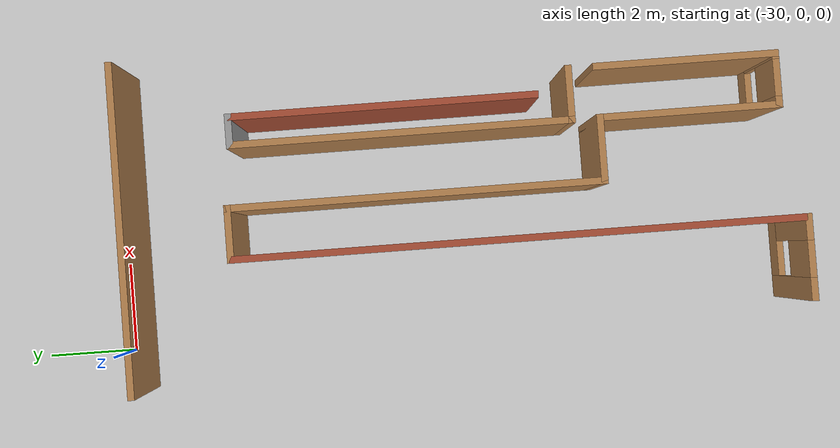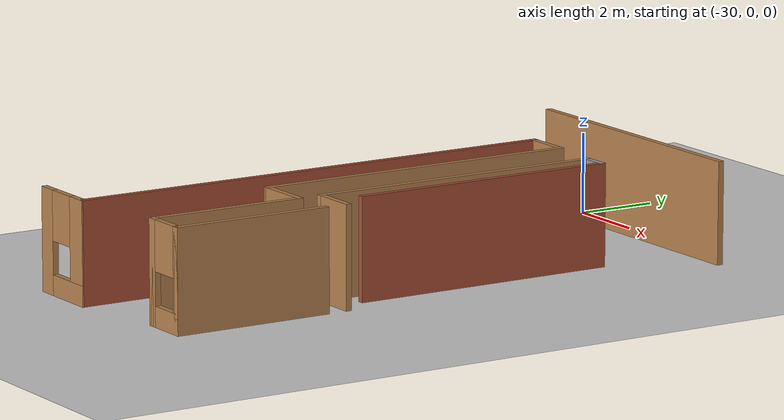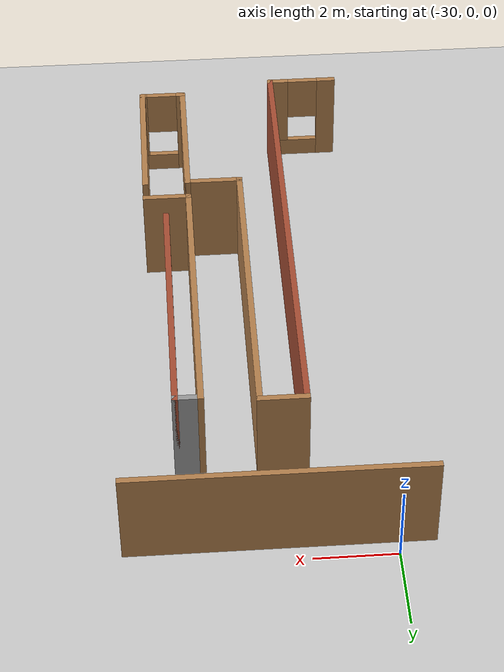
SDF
<sdf version="1.7">
 <world name="default">
  <model name="ground_plane">
   <static>1</static>
   <link name="link">
    <collision name="collision">
     <geometry><plane><normal>0 0 1</normal><size>100 100</size></plane></geometry>
     <surface><friction><ode><mu>100</mu><mu2>50</mu2></ode></friction></surface>
    </collision>
    <visual name="visual">
     <cast_shadows>0</cast_shadows>
     <geometry><plane><normal>0 0 1</normal><size>100 100</size></plane></geometry>
     <material>
      <script><uri>file://media/materials/scripts/gazebo.material</uri><name>Gazebo/Grey</name></script>
     </material>
    </visual>
   </link>
  </model>
  <model name="simple_maze">
   <pose>-16.3821 -8.2673 0 0 -0 0</pose>
   <link name="Wall_17">
    <pose>-12.554 -6.86796 0 0 -0 0</pose>
    <visual name="Wall_17_Visual_0">
     <pose>-0.686423 0 1.25 0 -0 0</pose>
     <geometry><box><size>0.501673 0.15 2.5</size></box></geometry>
     <material>
      <script><uri>file://media/materials/scripts/gazebo.material</uri><name>Gazebo/Wood</name></script>
      <ambient>1 1 1 1</ambient>
     </material>
     <meta><layer>0</layer></meta>
    </visual>
    <collision name="Wall_17_Collision_0">
     <geometry><box><size>0.501673 0.15 2.5</size></box></geometry>
     <pose>-0.686423 0 1.25 0 -0 0</pose>
    </collision>
    <visual name="Wall_17_Visual_1">
     <pose>0.250836 0 0.25 0 -0 0</pose>
     <geometry><box><size>1.37285 0.15 0.5</size></box></geometry>
     <material>
      <script><uri>file://media/materials/scripts/gazebo.material</uri><name>Gazebo/Wood</name></script>
      <ambient>1 1 1 1</ambient>
     </material>
     <meta><layer>0</layer></meta>
    </visual>
    <collision name="Wall_17_Collision_1">
     <geometry><box><size>1.37285 0.15 0.5</size></box></geometry>
     <pose>0.250836 0 0.25 0 -0 0</pose>
    </collision>
    <visual name="Wall_17_Visual_2">
     <pose>0.650836 0 1.5 0 -0 0</pose>
     <geometry><box><size>0.572846 0.15 2</size></box></geometry>
     <material>
      <script><uri>file://media/materials/scripts/gazebo.material</uri><name>Gazebo/Wood</name></script>
      <ambient>1 1 1 1</ambient>
     </material>
     <meta><layer>0</layer></meta>
    </visual>
    <collision name="Wall_17_Collision_2">
     <geometry><box><size>0.572846 0.15 2</size></box></geometry>
     <pose>0.650836 0 1.5 0 -0 0</pose>
    </collision>
    <visual name="Wall_17_Visual_3">
     <pose>-0.035586 0 1.9 0 -0 0</pose>
     <geometry><box><size>0.8 0.15 1.2</size></box></geometry>
     <material>
      <script><uri>file://media/materials/scripts/gazebo.material</uri><name>Gazebo/Wood</name></script>
      <ambient>1 1 1 1</ambient>
     </material>
     <meta><layer>0</layer></meta>
    </visual>
    <collision name="Wall_17_Collision_3">
     <geometry><box><size>0.8 0.15 1.2</size></box></geometry>
     <pose>-0.035586 0 1.9 0 -0 0</pose>
    </collision>
   </link>
   <link name="Wall_18">
    <collision name="Wall_18_Collision">
     <geometry><box><size>12.5 0.15 2.5</size></box></geometry>
     <pose>0 0 1.25 0 -0 0</pose>
    </collision>
    <visual name="Wall_18_Visual">
     <pose>0 0 1.25 0 -0 0</pose>
     <geometry><box><size>12.5 0.15 2.5</size></box></geometry>
     <material>
      <script><uri>file://media/materials/scripts/gazebo.material</uri><name>Gazebo/Bricks</name></script>
      <ambient>1 1 1 1</ambient>
     </material>
     <meta><layer>0</layer></meta>
    </visual>
    <pose>-11.6917 -0.662371 0 0 -0 1.5708</pose>
   </link>
   <link name="Wall_33">
    <collision name="Wall_33_Collision">
     <geometry><box><size>7.25 0.15 2.5</size></box></geometry>
     <pose>0 0 1.25 0 -0 0</pose>
    </collision>
    <visual name="Wall_33_Visual">
     <pose>0 0 1.25 0 -0 0</pose>
     <geometry><box><size>7.25 0.15 2.5</size></box></geometry>
     <material>
      <script><uri>file://media/materials/scripts/gazebo.material</uri><name>Gazebo/Wood</name></script>
      <ambient>1 1 1 1</ambient>
     </material>
     <meta><layer>0</layer></meta>
    </visual>
    <pose>-10.8948 7.83737 0 0 -0 0</pose>
   </link>
   <link name="Wall_57">
    <collision name="Wall_57_Collision">
     <geometry><box><size>1.25 0.15 2.5</size></box></geometry>
     <pose>0 0 1.25 0 -0 0</pose>
    </collision>
    <visual name="Wall_57_Visual">
     <pose>0 0 1.25 0 -0 0</pose>
     <geometry><box><size>1.25 0.15 2.5</size></box></geometry>
     <material>
      <script><uri>file://media/materials/scripts/gazebo.material</uri><name>Gazebo/Wood</name></script>
      <ambient>1 1 1 1</ambient>
     </material>
     <meta><layer>0</layer></meta>
    </visual>
    <pose>-11.1417 5.51263 0 0 -0 0</pose>
   </link>
   <link name="Wall_58">
    <collision name="Wall_58_Collision">
     <geometry><box><size>8.25 0.15 2.5</size></box></geometry>
     <pose>0 0 1.25 0 -0 0</pose>
    </collision>
    <visual name="Wall_58_Visual">
     <pose>0 0 1.25 0 -0 0</pose>
     <geometry><box><size>8.25 0.15 2.5</size></box></geometry>
     <material>
      <script><uri>file://media/materials/scripts/gazebo.material</uri><name>Gazebo/Wood</name></script>
      <ambient>1 1 1 1</ambient>
     </material>
     <meta><layer>0</layer></meta>
    </visual>
    <pose>-10.5917 1.46263 0 0 -0 -1.5708</pose>
   </link>
   <link name="Wall_59">
    <collision name="Wall_59_Collision">
     <geometry><box><size>1.5 0.15 2.5</size></box></geometry>
     <pose>0 0 1.25 0 -0 0</pose>
    </collision>
    <visual name="Wall_59_Visual">
     <pose>0 0 1.25 0 -0 0</pose>
     <geometry><box><size>1.5 0.15 2.5</size></box></geometry>
     <material>
      <script><uri>file://media/materials/scripts/gazebo.material</uri><name>Gazebo/Wood</name></script>
      <ambient>1 1 1 1</ambient>
     </material>
     <meta><layer>0</layer></meta>
    </visual>
    <pose>-9.91675 -2.58737 0 0 -0 0</pose>
   </link>
   <link name="Wall_60">
    <collision name="Wall_60_Collision">
     <geometry><box><size>4 0.15 2.5</size></box></geometry>
     <pose>0 0 1.25 0 -0 0</pose>
    </collision>
    <visual name="Wall_60_Visual">
     <pose>0 0 1.25 0 -0 0</pose>
     <geometry><box><size>4 0.15 2.5</size></box></geometry>
     <material>
      <script><uri>file://media/materials/scripts/gazebo.material</uri><name>Gazebo/Wood</name></script>
      <ambient>1 1 1 1</ambient>
     </material>
     <meta><layer>0</layer></meta>
    </visual>
    <pose>-9.24175 -4.51237 0 0 -0 -1.5708</pose>
   </link>
   <link name="Wall_61">
    <pose>-8.69175 -6.43737 0 0 -0 0</pose>
    <visual name="Wall_61_Visual_0">
     <pose>-0.499327 0 1.25 0 -0 0</pose>
     <geometry><box><size>0.251345 0.15 2.5</size></box></geometry>
     <material>
      <script><uri>file://media/materials/scripts/gazebo.material</uri><name>Gazebo/Wood</name></script>
      <ambient>1 1 1 1</ambient>
     </material>
     <meta><layer>0</layer></meta>
    </visual>
    <collision name="Wall_61_Collision_0">
     <geometry><box><size>0.251345 0.15 2.5</size></box></geometry>
     <pose>-0.499327 0 1.25 0 -0 0</pose>
    </collision>
    <visual name="Wall_61_Visual_1">
     <pose>0.125673 0 0.25 0 -0 0</pose>
     <geometry><box><size>0.998655 0.15 0.5</size></box></geometry>
     <material>
      <script><uri>file://media/materials/scripts/gazebo.material</uri><name>Gazebo/Wood</name></script>
      <ambient>1 1 1 1</ambient>
     </material>
     <meta><layer>0</layer></meta>
    </visual>
    <collision name="Wall_61_Collision_1">
     <geometry><box><size>0.998655 0.15 0.5</size></box></geometry>
     <pose>0.125673 0 0.25 0 -0 0</pose>
    </collision>
    <visual name="Wall_61_Visual_2">
     <pose>0.525673 0 1.5 0 -0 0</pose>
     <geometry><box><size>0.198655 0.15 2</size></box></geometry>
     <material>
      <script><uri>file://media/materials/scripts/gazebo.material</uri><name>Gazebo/Wood</name></script>
      <ambient>1 1 1 1</ambient>
     </material>
     <meta><layer>0</layer></meta>
    </visual>
    <collision name="Wall_61_Collision_2">
     <geometry><box><size>0.198655 0.15 2</size></box></geometry>
     <pose>0.525673 0 1.5 0 -0 0</pose>
    </collision>
    <visual name="Wall_61_Visual_3">
     <pose>0.026345 0 1.9 0 -0 0</pose>
     <geometry><box><size>0.8 0.15 1.2</size></box></geometry>
     <material>
      <script><uri>file://media/materials/scripts/gazebo.material</uri><name>Gazebo/Wood</name></script>
      <ambient>1 1 1 1</ambient>
     </material>
     <meta><layer>0</layer></meta>
    </visual>
    <collision name="Wall_61_Collision_3">
     <geometry><box><size>0.8 0.15 1.2</size></box></geometry>
     <pose>0.026345 0 1.9 0 -0 0</pose>
    </collision>
   </link>
   <link name="Wall_62">
    <collision name="Wall_62_Collision">
     <geometry><box><size>4 0.15 2.5</size></box></geometry>
     <pose>0 0 1.25 0 -0 0</pose>
    </collision>
    <visual name="Wall_62_Visual">
     <pose>0 0 1.25 0 -0 0</pose>
     <geometry><box><size>4 0.15 2.5</size></box></geometry>
     <material>
      <script><uri>file://media/materials/scripts/gazebo.material</uri><name>Gazebo/Wood</name></script>
      <ambient>1 1 1 1</ambient>
     </material>
     <meta><layer>0</layer></meta>
    </visual>
    <pose>-8.14175 -4.51237 0 0 -0 1.5708</pose>
   </link>
   <link name="Wall_64">
    <collision name="Wall_64_Collision">
     <geometry><box><size>1.25 0.15 2.5</size></box></geometry>
     <pose>0 0 1.25 0 -0 0</pose>
    </collision>
    <visual name="Wall_64_Visual">
     <pose>0 0 1.25 0 -0 0</pose>
     <geometry><box><size>1.25 0.15 2.5</size></box></geometry>
     <material>
      <script><uri>file://media/materials/scripts/gazebo.material</uri><name>Gazebo/Wood</name></script>
      <ambient>1 1 1 1</ambient>
     </material>
     <meta><layer>0</layer></meta>
    </visual>
    <pose>-8.69175 -1.98737 0 0 -0 3.14159</pose>
   </link>
   <link name="Wall_65">
    <collision name="Wall_65_Collision">
     <geometry><box><size>7.5 0.15 2.5</size></box></geometry>
     <pose>0 0 1.25 0 -0 0</pose>
    </collision>
    <visual name="Wall_65_Visual">
     <pose>0 0 1.25 0 -0 0</pose>
     <geometry><box><size>7.5 0.15 2.5</size></box></geometry>
     <material>
      <script><uri>file://media/materials/scripts/gazebo.material</uri><name>Gazebo/Wood</name></script>
      <ambient>1 1 1 1</ambient>
     </material>
     <meta><layer>0</layer></meta>
    </visual>
    <pose>-9.24175 1.68763 0 0 -0 1.5708</pose>
   </link>
   <link name="Wall_66">
    <collision name="Wall_66_Collision">
     <geometry><box><size>0.75 0.15 2.5</size></box></geometry>
     <pose>0 0 1.25 0 -0 0</pose>
    </collision>
    <visual name="Wall_66_Visual">
     <pose>0 0 1.25 0 -0 0</pose>
     <geometry><box><size>0.75 0.15 2.5</size></box></geometry>
     <material>
      <script><uri>file://media/materials/scripts/gazebo.material</uri><name>Gazebo/Grey</name></script>
      <ambient>1 1 1 1</ambient>
     </material>
     <meta><layer>0</layer></meta>
    </visual>
    <pose>-8.94175 5.36263 0 0 -0 0</pose>
   </link>
   <link name="Wall_67">
    <collision name="Wall_67_Collision">
     <geometry><box><size>6.75 0.15 2.5</size></box></geometry>
     <pose>0 0 1.25 0 -0 0</pose>
    </collision>
    <visual name="Wall_67_Visual">
     <pose>0 0 1.25 0 -0 0</pose>
     <geometry><box><size>6.75 0.15 2.5</size></box></geometry>
     <material>
      <script><uri>file://media/materials/scripts/gazebo.material</uri><name>Gazebo/Bricks</name></script>
      <ambient>1 1 1 1</ambient>
     </material>
     <meta><layer>0</layer></meta>
    </visual>
    <pose>-8.64175 2.06263 0 0 -0 -1.5708</pose>
   </link>
   <static>1</static>
  </model>
 </world>
</sdf>
